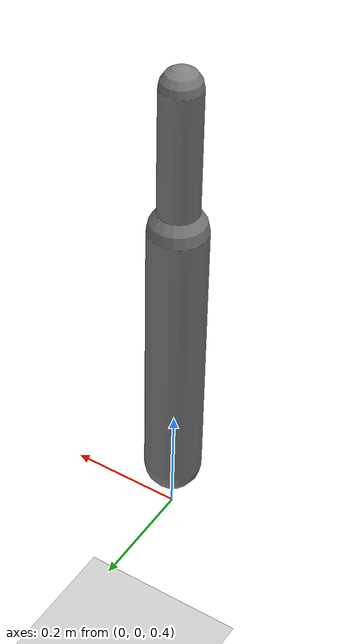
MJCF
<?xml version='1.0' encoding='UTF-8'?>
<mujoco model="RobotModel">
  <option gravity="0 0 -9.81" timestep="0.002" solver="CG" iterations="500" integrator="Euler"/>
  <worldbody>
    <geom name="Floor" type="plane" size="10 10 0.1" pos="0 0 0" rgba="0.8 0.8 0.8 1"/>
    <body name="Limb0" pos="0 0 0.5">
      <geom type="capsule" fromto="0 0 0 0 0 0.5" size="0.05" density="1000" contype="0" conaffinity="0"/>
      <body name="Limb0_1d22d756" pos="0 0 0.5">
        <geom type="capsule" fromto="0 0 0 0 0 0.2541686100748788" size="0.03452616833361533" density="800" contype="0" conaffinity="0"/>
        <joint name="Joint_Limb0_Limb0_1d22d756_0" type="hinge" axis="0 1 0" range="-60 60"/>
      </body>
      <body name="Limb1_1d22d756" pos="0 0 0.5">
        <geom type="capsule" fromto="0 0 0 0 0 0.20493054001700442" size="0.01993548420975087" density="800" contype="0" conaffinity="0"/>
        <joint name="Joint_Limb0_Limb1_1d22d756_0" type="hinge" axis="1 0 0" range="-60 60"/>
      </body>
    </body>
  </worldbody>
  <actuator>
    <position name="position_Actuator_Joint_Limb0_Limb0_1d22d756_0" joint="Joint_Limb0_Limb0_1d22d756_0" gear="1.0"/>
    <position name="position_Actuator_Joint_Limb0_Limb1_1d22d756_0" joint="Joint_Limb0_Limb1_1d22d756_0" gear="1.0"/>
  </actuator>
</mujoco>
